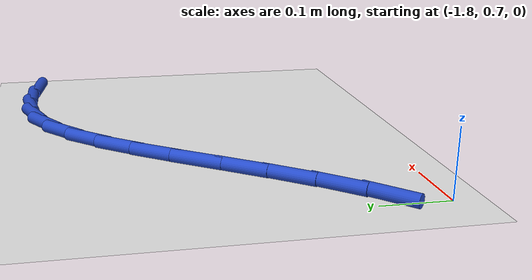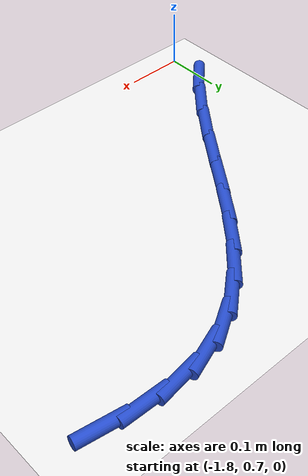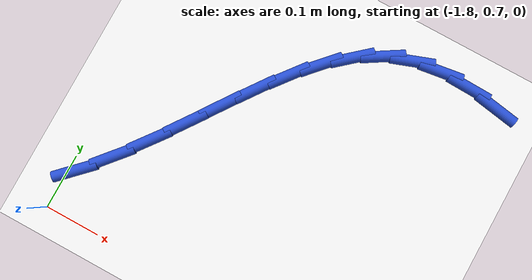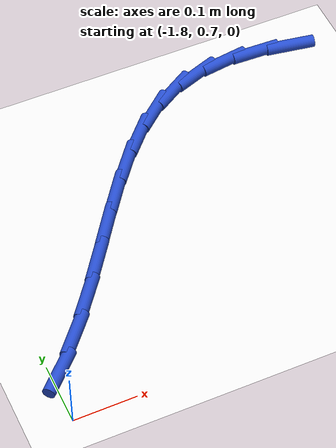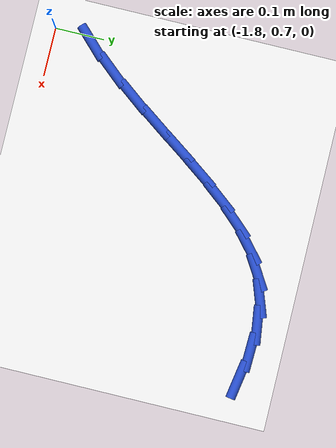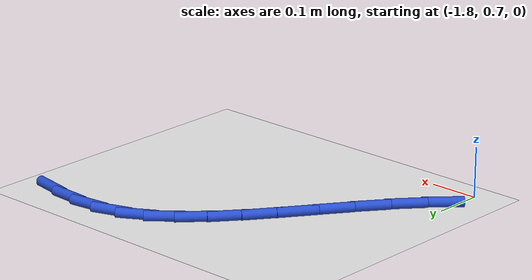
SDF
<sdf version="1.6">
 <world name="default">
  <model name="ground_plane">
   <static>1</static>
   <link name="link">
    <collision name="collision">
     <geometry><plane><normal>0 0 1</normal><size>100 100</size></plane></geometry>
     <surface><friction><ode><mu>100</mu><mu2>50</mu2></ode></friction></surface>
    </collision>
    <visual name="visual">
     <cast_shadows>0</cast_shadows>
     <geometry><plane><normal>0 0 1</normal><size>100 100</size></plane></geometry>
     <material>
      <script><uri>file://media/materials/scripts/gazebo.material</uri><name>Gazebo/WhiteGlow</name></script>
     </material>
    </visual>
   </link>
  </model>
  <model name="line">
   <link name="link_28">
    <pose>-1.1972323677267973 1.22422351636549 0.01 0 1.57 -0.16718206902572086</pose>
    <collision name="collision">
     <geometry><cylinder><radius>0.01</radius><length>0.08</length></cylinder></geometry>
    </collision>
    <visual name="visual">
     <material>
      <script><name>Gazebo/Blue</name><uri>file://media/materials/scripts/gazebo.material</uri></script>
     </material>
     <geometry><cylinder><radius>0.01</radius><length>0.08</length></cylinder></geometry>
    </visual>
   </link>
   <link name="link_29">
    <pose>-1.255831962445771 1.2341126229828834 0.01 0 1.57 -0.032294297142166334</pose>
    <collision name="collision">
     <geometry><cylinder><radius>0.01</radius><length>0.08</length></cylinder></geometry>
    </collision>
    <visual name="visual">
     <material>
      <script><name>Gazebo/Blue</name><uri>file://media/materials/scripts/gazebo.material</uri></script>
     </material>
     <geometry><cylinder><radius>0.01</radius><length>0.08</length></cylinder></geometry>
    </visual>
   </link>
   <link name="link_30">
    <pose>-1.3118072500206044 1.235920934238462 0.01 0 1.57 0.13794524900042568</pose>
    <collision name="collision">
     <geometry><cylinder><radius>0.01</radius><length>0.08</length></cylinder></geometry>
    </collision>
    <visual name="visual">
     <material>
      <script><name>Gazebo/Blue</name><uri>file://media/materials/scripts/gazebo.material</uri></script>
     </material>
     <geometry><cylinder><radius>0.01</radius><length>0.08</length></cylinder></geometry>
    </visual>
   </link>
   <link name="link_31">
    <pose>-1.3646516471118426 1.2285847081671044 0.01 0 1.57 0.34232196374466173</pose>
    <collision name="collision">
     <geometry><cylinder><radius>0.01</radius><length>0.08</length></cylinder></geometry>
    </collision>
    <visual name="visual">
     <material>
      <script><name>Gazebo/Blue</name><uri>file://media/materials/scripts/gazebo.material</uri></script>
     </material>
     <geometry><cylinder><radius>0.01</radius><length>0.08</length></cylinder></geometry>
    </visual>
   </link>
   <link name="link_32">
    <pose>-1.4138625719220494 1.2110483192826997 0.01 0 1.57 0.5501917486018906</pose>
    <collision name="collision">
     <geometry><cylinder><radius>0.01</radius><length>0.08</length></cylinder></geometry>
    </collision>
    <visual name="visual">
     <material>
      <script><name>Gazebo/Blue</name><uri>file://media/materials/scripts/gazebo.material</uri></script>
     </material>
     <geometry><cylinder><radius>0.01</radius><length>0.08</length></cylinder></geometry>
    </visual>
   </link>
   <link name="link_33">
    <pose>-1.4593707403862113 1.1831350162766916 0.01 0 1.57 0.7132163734208813</pose>
    <collision name="collision">
     <geometry><cylinder><radius>0.01</radius><length>0.08</length></cylinder></geometry>
    </collision>
    <visual name="visual">
     <material>
      <script><name>Gazebo/Blue</name><uri>file://media/materials/scripts/gazebo.material</uri></script>
     </material>
     <geometry><cylinder><radius>0.01</radius><length>0.08</length></cylinder></geometry>
    </visual>
   </link>
   <link name="link_34">
    <pose>-1.501922327054824 1.1463220733901884 0.01 0 1.57 0.8282336336114281</pose>
    <collision name="collision">
     <geometry><cylinder><radius>0.01</radius><length>0.08</length></cylinder></geometry>
    </collision>
    <visual name="visual">
     <material>
      <script><name>Gazebo/Blue</name><uri>file://media/materials/scripts/gazebo.material</uri></script>
     </material>
     <geometry><cylinder><radius>0.01</radius><length>0.08</length></cylinder></geometry>
    </visual>
   </link>
   <link name="link_35">
    <pose>-1.5423536587653779 1.1022696241574732 0.01 0 1.57 0.9029491086474667</pose>
    <collision name="collision">
     <geometry><cylinder><radius>0.01</radius><length>0.08</length></cylinder></geometry>
    </collision>
    <visual name="visual">
     <material>
      <script><name>Gazebo/Blue</name><uri>file://media/materials/scripts/gazebo.material</uri></script>
     </material>
     <geometry><cylinder><radius>0.01</radius><length>0.08</length></cylinder></geometry>
    </visual>
   </link>
   <link name="link_36">
    <pose>-1.5815010623553623 1.05263780211283 0.01 0 1.57 0.9450163721412652</pose>
    <collision name="collision">
     <geometry><cylinder><radius>0.01</radius><length>0.08</length></cylinder></geometry>
    </collision>
    <visual name="visual">
     <material>
      <script><name>Gazebo/Blue</name><uri>file://media/materials/scripts/gazebo.material</uri></script>
     </material>
     <geometry><cylinder><radius>0.01</radius><length>0.08</length></cylinder></geometry>
    </visual>
   </link>
   <link name="link_37">
    <pose>-1.620200864662266 0.9990867407905419 0.01 0 1.57 0.9598129334665284</pose>
    <collision name="collision">
     <geometry><cylinder><radius>0.01</radius><length>0.08</length></cylinder></geometry>
    </collision>
    <visual name="visual">
     <material>
      <script><name>Gazebo/Blue</name><uri>file://media/materials/scripts/gazebo.material</uri></script>
     </material>
     <geometry><cylinder><radius>0.01</radius><length>0.08</length></cylinder></geometry>
    </visual>
   </link>
   <link name="link_38">
    <pose>-1.6592893925235785 0.9432765737248919 0.01 0 1.57 0.9502964092008966</pose>
    <collision name="collision">
     <geometry><cylinder><radius>0.01</radius><length>0.08</length></cylinder></geometry>
    </collision>
    <visual name="visual">
     <material>
      <script><name>Gazebo/Blue</name><uri>file://media/materials/scripts/gazebo.material</uri></script>
     </material>
     <geometry><cylinder><radius>0.01</radius><length>0.08</length></cylinder></geometry>
    </visual>
   </link>
   <link name="link_39">
    <pose>-1.6996029727767894 0.8868674344501637 0.01 0 1.57 0.9173795097349259</pose>
    <collision name="collision">
     <geometry><cylinder><radius>0.01</radius><length>0.08</length></cylinder></geometry>
    </collision>
    <visual name="visual">
     <material>
      <script><name>Gazebo/Blue</name><uri>file://media/materials/scripts/gazebo.material</uri></script>
     </material>
     <geometry><cylinder><radius>0.01</radius><length>0.08</length></cylinder></geometry>
    </visual>
   </link>
   <link name="link_40">
    <pose>-1.7419779322593876 0.8315194565006403 0.01 0 1.57 0.8603754949763053</pose>
    <collision name="collision">
     <geometry><cylinder><radius>0.01</radius><length>0.08</length></cylinder></geometry>
    </collision>
    <visual name="visual">
     <material>
      <script><name>Gazebo/Blue</name><uri>file://media/materials/scripts/gazebo.material</uri></script>
     </material>
     <geometry><cylinder><radius>0.01</radius><length>0.08</length></cylinder></geometry>
    </visual>
   </link>
   <link name="link_41">
    <pose>-1.7872505978088622 0.7788927734106056 0.01 0 1.57 0.7829572455891631</pose>
    <collision name="collision">
     <geometry><cylinder><radius>0.01</radius><length>0.08</length></cylinder></geometry>
    </collision>
    <visual name="visual">
     <material>
      <script><name>Gazebo/Blue</name><uri>file://media/materials/scripts/gazebo.material</uri></script>
     </material>
     <geometry><cylinder><radius>0.01</radius><length>0.08</length></cylinder></geometry>
    </visual>
   </link>
  </model>
 </world>
</sdf>
